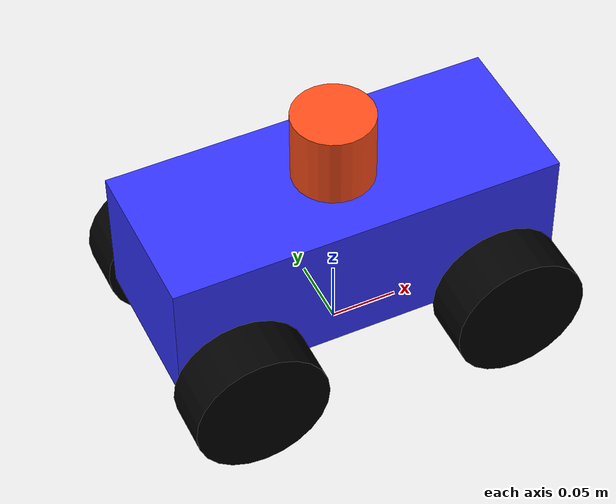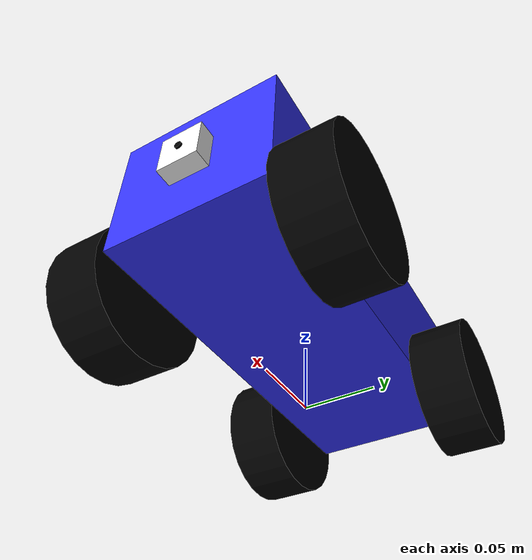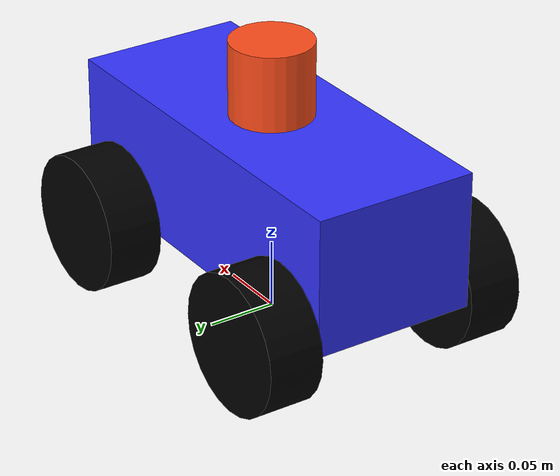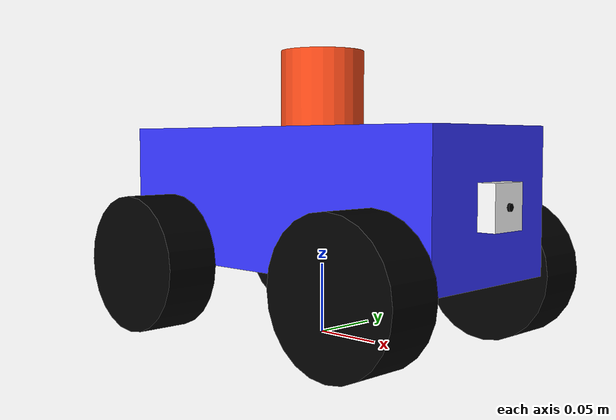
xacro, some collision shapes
<?xml version="1.0"?>
<robot name="oskar" xmlns:xacro="http://www.ros.org/wiki/xacro" >

    <xacro:include filename="colours.xacro" />
    <xacro:include filename="params.xacro" />
    <xacro:include filename="macros.xacro" />

    <!-- Core Robot Description -->

    <!-- Base Link -->
    <link name="base_link" >
        <visual>
            <geometry>
                <mesh filename="file://box.dae" />
            </geometry>
            <origin xyz="0 0 0" rpy="0 0 0" />
            <material name="blue" />
        </visual>
        <collision>
            <geometry>
                <box size="0.29 0.12 0.10" />
            </geometry>
            <origin xyz="0 0 0.05" rpy="0 0 0" />
        </collision>
        <xacro:default_inertial mass="${base_mass}"/>
    </link>

    <!-- Base Footprint -->
    <link name="base_footprint" />

    <joint name="base_link" type="fixed">
        <parent link="base_footprint"/>
        <child link="base_link"/>
        <origin xyz="0 0 0.05" rpy="0 0 0"/>
    </joint>

    <xacro:wheel_link wheel_link_name="left_front_wheel_link"/>

    <joint name="base_left_front_wheel_joint" type="continuous">
        <parent link="base_link"/>
        <child link="left_front_wheel_link"/>
        <origin xyz="0.10 0.08 0" rpy="0 0 0" />
        <axis xyz="0.0 1 0.0"/>
    </joint>

<!-- Right Front Wheel Link-->

    <xacro:wheel_link wheel_link_name="right_front_wheel_link"/>

    <joint name="base_right_front_wheel_joint" type="continuous">
        <parent link="base_link"/>
        <child link="right_front_wheel_link"/>
        <origin xyz="0.10 -0.08 0" rpy="0 0 0" />
        <axis xyz="0.0 1 0.0"/>
    </joint>

   <!-- Left Back Wheel Link-->

    <xacro:wheel_link wheel_link_name="left_back_wheel_link"/>

    <joint name="base_left_back_wheel_joint" type="continuous">
        <parent link="base_link"/>
        <child link="left_back_wheel_link"/>
        <origin xyz="-0.10 0.08 0" rpy="0 0 0" />
        <axis xyz="0.0 1 0.0"/>
    </joint>

<!-- Right Back Wheel Link-->

    <xacro:wheel_link wheel_link_name="right_back_wheel_link"/>

    <joint name="base_right_back_wheel_joint" type="continuous">
        <parent link="base_link"/>
        <child link="right_back_wheel_link"/>
        <origin xyz="-0.10 -0.08 0" rpy="0 0 0" />
        <axis xyz="0.0 1 0.0"/>
    </joint>

    <!-- Sensor Descriptions -->

    <!-- Lidar Link -->

    <xacro:include filename="lidar.xacro" />

    <!-- Camera Link -->

    <xacro:include filename="camera.xacro" />

    <!-- Left Front Wheel Link-->

</robot>

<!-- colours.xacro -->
<robot xmlns:xacro="http://www.ros.org/wiki/xacro" name="oskar">

<!-- Colour file -->

    <material name="white">
        <color rgba="1 1 1 1" />
    </material>

    <material name="orange">
        <color rgba="1 0.3 0.1 1" />
    </material>

    <material name="blue">
        <color rgba="0.2 0.2 1 1" />
    </material>

    <material name="black">
        <color rgba="0 0 0 1" />
    </material>

</robot>

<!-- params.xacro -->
<robot xmlns:xacro="http://www.ros.org/wiki/xacro" name="oskar">

    <!-- Mass Values -->

    <xacro:property name="base_mass" value="2.368"/>
    <xacro:property name="wheel_mass" value="0.060"/>
    <xacro:property name="lidar_mass" value="0.170"/>
    <xacro:property name="camera_mass" value="0.040"/>

    <!-- General Values -->

    <xacro:property name="pi" value="3.14159"/>

    <!-- Wheel Values -->

    <xacro:property name="wheel_radius" value="0.05"/>
    <xacro:property name="wheel_width" value="0.04"/>

</robot>

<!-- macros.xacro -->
<robot xmlns:xacro="http://www.ros.org/wiki/xacro" name="oskar">

<!-- Macros file -->

    <!-- Set Inertial Tags -->

    <xacro:macro name="default_inertial" params="mass">
        <inertial>
            <mass value="${mass}" />
            <inertia ixx="1e-3" ixy="0.0" ixz="0.0"
                 iyy="1e-3" iyz="0.0"
                 izz="1e-3" />
        </inertial>
    </xacro:macro>

    <!-- Full Wheel Macro -->

    <xacro:macro name="wheel_link" params="wheel_link_name">
        <link name="${wheel_link_name}">
            <visual>
                <geometry>
                    <cylinder radius="0.05" length="0.04"/>
                </geometry>
                <origin xyz="0 0 0" rpy="1.57 0 0" />
                <material name="black" />
            </visual>
            <collision>
                <geometry>
                    <cylinder radius="${wheel_radius}" length="${wheel_width}"/>
                </geometry>
                <origin xyz="0 0 0" rpy="1.57 0 0" />
            </collision>
            <inertial>
                <mass value="${wheel_mass}" />
            <inertia ixx="1e-3" ixy="0.0" ixz="0.0"
                 iyy="1e-3" iyz="0.0"
                 izz="1e-3" />
            </inertial>
    </link>
    </xacro:macro>

</robot>

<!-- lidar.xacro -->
<robot xmlns:xacro="http://www.ros.org/wiki/xacro" name="oskar">

    <!-- Lidar Description -->

    <link name="lidar_link">
        <visual>
            <geometry>
                <cylinder radius="0.03" length="0.07"/>
            </geometry>
            <origin xyz="0 0 0" rpy="0 0 0" />
            <material name="orange" />
        </visual>
        <collision>
            <geometry>
                <cylinder radius="0.03" length="0.07"/>
            </geometry>
            <origin xyz="0 0 0" rpy="0 0 0" />
        </collision>
        <inertial>
            <mass value="0.170"/>
            <inertia ixx="1e-3" ixy="0.0" ixz="0.0" iyy="1e-3" iyz="0.0" izz="1e-3"/>
        </inertial>

    </link>

    <joint name="base_lidar_joint" type="fixed">
        <parent link="base_link"/>
        <child link="lidar_link"/>
        <origin xyz="0 0 0.12" rpy="0 0 0" />
    </joint>

    <gazebo reference="laser_frame">
        <material>Gazebo/Black</material>

        <sensor name="laser" type="ray">
            <pose> 0 0 0 0 0 0 </pose>
            <visualize>false</visualize>
            <update_rate>10</update_rate>
            <ray>
                <scan>
                    <horizontal>
                        <samples>360</samples>
                        <min_angle>-3.14</min_angle>
                        <max_angle>3.14</max_angle>
                    </horizontal>
                </scan>
                <range>
                    <min>0.3</min>
                    <max>12</max>
                </range>
            </ray>
            <plugin name="laser_controller" filename="libgazebo_ros_ray_sensor.so">
                <ros>
                    <argument>~/out:=scan</argument>
                </ros>
                <output_type>sensor_msgs/LaserScan</output_type>
                <frame_name>laser_frame</frame_name>
            </plugin>
        </sensor>
    </gazebo>

</robot>

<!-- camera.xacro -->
<robot xmlns:xacro="http://www.ros.org/wiki/xacro" name="oskar">

    <!-- Camera Description -->

    <link name="camera_link">
        <visual>
            <geometry>
                <box size="0.025 0.03 0.03"/>
            </geometry>
            <origin xyz="0 0 0" rpy="0 0 0" />
            <material name="white"/>
        </visual>
        <collision>
            <geometry>
                <box size="0.025 0.03 0.03"/>
            </geometry>
            <origin xyz="0 0 0" rpy="0 0 0" />
        </collision>
        <xacro:default_inertial mass="${camera_mass}"/>
    </link>

    <joint name="base_camera_joint" type="fixed">
        <parent link="base_link"/>
        <child link="camera_link"/>
        <origin xyz="0.145 0 0.05" rpy="0 0 0"/>
    </joint>

    <link name="camera_lens_link">
        <visual>
            <geometry>
                <cylinder radius="0.0025" length="0.003"/>
            </geometry>
            <origin xyz="0 0 0" rpy="0 ${pi/2} 0" />
            <material name="black"/>
        </visual>
        <collision>
             <geometry>
                <cylinder radius="0.0025" length="0.003"/>
            </geometry>
            <origin xyz="0 0 0" rpy="0 ${pi/2} 0" />
        </collision>
    </link>

    <joint name="camera_camera_lens_joint" type="fixed">
        <parent link="camera_link"/>
        <child link="camera_lens_link"/>
        <origin xyz="0.0125 0 0" rpy="0 0 0"/>
    </joint>

    <joint name="camera_optical_joint" type="fixed">
        <parent link="camera_lens_link" />
        <child link="camera_link_optical" />
        <origin xyz="0 0 0" rpy="${-pi/2} 0 ${-pi/2}" />
    </joint>

    <link name="camera_link_optical"></link>

    <gazebo reference="camera_link">
        <material>Gazebo/Black</material>

        <sensor name="camera" type="camera">
            <pose> 0 0 0 0 0 0 </pose>
            <visualize>true</visualize>
            <update_rate>10</update_rate>
            <camera>
                <horizontal_fov>1.089</horizontal_fov>
                <image>
                    <format>R8G8B8</format>
                    <width>640</width>
                    <height>480</height>
                </image>
                <clip>
                    <near>0.05</near>
                    <far>8.0</far>
                </clip>
            </camera>
            <plugin name="camera_controller" filename="libgazebo_ros_camera.so">
                <frame_name>camera_link_optical</frame_name>
            </plugin>
        </sensor>
    </gazebo>

</robot>
